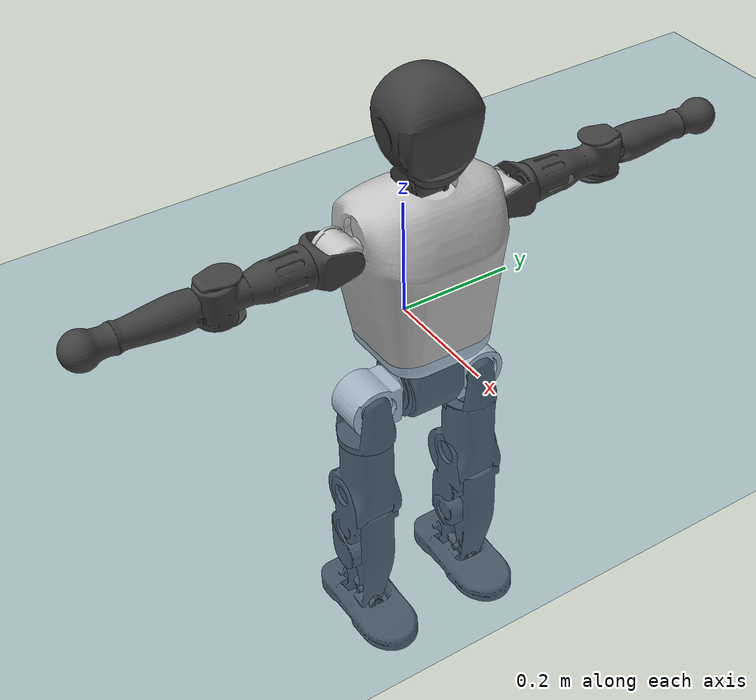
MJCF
<mujoco model="T1">
  <compiler angle="radian" assetdir="assets" balanceinertia="true" inertiafromgeom="false"/>

  <option timestep="0.005" density="1.2" viscosity="2e-05"/>

  <size nkey="1"/>

  <visual>
    <quality shadowsize="8192"/>
    <map shadowclip="0.5"/>
  </visual>

  <default>
    <default class="/">
      <joint armature="0.01" damping="0.01" frictionloss="0.1"/>
      <geom contype="0" conaffinity="0" group="1" solref="-1000 -80"/>
      <site size="0.01 0.005 0.005" group="5"/>
      <general forcelimited="true" biastype="affine" gainprm="25" biasprm="0 -25 -0.6"/>
      <default class="t1">
        <geom rgba="0.25 0.25 0.25 1"/>
        <default class="visual">
          <geom type="mesh" group="2"/>
        </default>
        <default class="collision">
          <geom group="3"/>
        </default>
        <default class="foot">
          <geom size="0.1115 0.05 0.015" type="box" condim="6" group="4" priority="1" solimp="0.015 1 0.015"/>
        </default>
        <default class="reward_collision_sphere">
          <geom group="5" rgba="1 0 0 1"/>
        </default>
      </default>
    </default>
  </default>

  <asset>
    <texture type="skybox" colorspace="auto" name="//unnamed_texture_0" builtin="gradient" rgb1="0.95 0.95 0.95" rgb2="0.95 0.95 0.95" width="100" height="600"/>
    <texture type="2d" colorspace="auto" name="texplane" builtin="checker" rgb1="0.345 0.575 0.748" rgb2="0.345 0.575 0.748" markrgb="1 1 1" width="512" height="512"/>
    <material name="MatPlane" class="/" texture="texplane" texuniform="true" texrepeat="2 2" specular="0.9"/>
    <mesh name="Trunk" class="/" file="Trunk.stl"/>
    <mesh name="H1" class="/" file="H1.stl"/>
    <mesh name="H2" class="/" file="H2.stl"/>
    <mesh name="AL1" class="/" file="AL1.stl"/>
    <mesh name="AL2" class="/" file="AL2.stl"/>
    <mesh name="AL3" class="/" file="AL3.stl"/>
    <mesh name="left_hand_link" class="/" file="left_hand_link.stl"/>
    <mesh name="AR1" class="/" file="AR1.stl"/>
    <mesh name="AR2" class="/" file="AR2.stl"/>
    <mesh name="AR3" class="/" file="AR3.stl"/>
    <mesh name="right_hand_link" class="/" file="right_hand_link.stl"/>
    <mesh name="Waist" class="/" file="Waist.stl"/>
    <mesh name="Hip_Pitch_Left" class="/" file="Hip_Pitch_Left.stl"/>
    <mesh name="Hip_Roll_Left" class="/" file="Hip_Roll_Left.stl"/>
    <mesh name="Hip_Yaw_Left" class="/" file="Hip_Yaw_Left.stl"/>
    <mesh name="Shank_Left" class="/" file="Shank_Left.stl"/>
    <mesh name="Ankle_Cross_Left" class="/" file="Ankle_Cross_Left.stl"/>
    <mesh name="left_foot_link" class="/" file="left_foot_link.stl"/>
    <mesh name="Hip_Pitch_Right" class="/" file="Hip_Pitch_Right.stl"/>
    <mesh name="Hip_Roll_Right" class="/" file="Hip_Roll_Right.stl"/>
    <mesh name="Hip_Yaw_Right" class="/" file="Hip_Yaw_Right.stl"/>
    <mesh name="Shank_Right" class="/" file="Shank_Right.stl"/>
    <mesh name="Ankle_Cross_Right" class="/" file="Ankle_Cross_Right.stl"/>
    <mesh name="right_foot_link" class="/" file="right_foot_link.stl"/>
  </asset>

  <worldbody>
    <geom name="floor" class="/" size="100 100 0.125" type="plane" group="0" material="MatPlane"/>
    <light name="toplight_shadow" class="/" pos="0 0 5" dir="0.0990148 0.0990148 -0.990148" type="directional" ambient="0.04 0.04 0.04" diffuse="0.55 0.55 0.55" specular="0.12 0.12 0.12"/>
    <light name="toplight_fill" class="/" pos="0 0 5" dir="0.0990148 0.0990148 -0.990148" type="directional" castshadow="false" ambient="0.04 0.04 0.04" diffuse="0.3 0.3 0.3" specular="0.08 0.08 0.08"/>
    <body name="trunk" childclass="t1" pos="-0.00271316 0.00018867 0.000982615" quat="1 0.00018295 0.000136449 -0.000117661">
      <inertial pos="0.0448862 0.00190532 0.0934369" quat="0.999962 -0.00189272 -0.0083644 -0.00174747" mass="7.39412" diaginertia="0.0302602 0.0467328 0.0254703"/>
      <joint name="//unnamed_joint_0" type="free" armature="0" damping="0" frictionloss="0"/>
      <geom name="//unnamed_geom_1" class="visual" rgba="0.76 0.76 0.76 1" mesh="Trunk"/>
      <geom name="//unnamed_geom_2" class="collision" size="0.0644091 0.0858788 0.128818" pos="0.0480486 0 0.103518" type="box"/>
      <geom name="//unnamed_geom_3" class="reward_collision_sphere" size="0.0987606" pos="0.0480486 0 0.0862652"/>
      <geom name="//unnamed_geom_4" class="reward_collision_sphere" size="0.0128818" pos="0.0480486 0.0775966 0"/>
      <geom name="//unnamed_geom_5" class="reward_collision_sphere" size="0.0128818" pos="0.0480486 -0.0775966 0"/>
      <geom name="//unnamed_geom_6" class="reward_collision_sphere" size="0.0128818" pos="0.0480486 0.0976805 0.155277"/>
      <geom name="//unnamed_geom_7" class="reward_collision_sphere" size="0.0128818" pos="0.0480486 -0.0976805 0.155277"/>
      <site name="imu" pos="0.00490852 -0.0129576 0.0125754" size="0.00858788"/>
      <camera name="track" pos="0 -1.8258 0" quat="0.707107 0.707107 0 0" mode="trackcom"/>
      <camera name="ego_camera" pos="0.0976988 0 0.362314" quat="-0.5 -0.5 0.5 0.5"/>
      <body name="H1" pos="0.0492586 -0.000612186 0.208242" quat="1 5.50537e-05 -8.66678e-05 -3.73163e-05">
        <inertial pos="-0.00135623 0.000994629 0.0504451" quat="0.764787 -0.0227383 0.010939 0.643789" mass="0.267047" diaginertia="7.84702e-05 0.000140396 6.99826e-05"/>
        <joint name="AAHead_yaw" pos="0 0 0" axis="-0.0059982 -0.0079623 0.99995" range="-1.62157 1.55918" armature="0.00831642" damping="0" frictionloss="0.0743701"/>
        <geom name="//unnamed_geom_8" class="visual" mesh="H1"/>
        <body name="H2" pos="-0.00140239 -0.000295871 0.0548608" quat="1 4.69858e-05 1.48743e-05 -0.000292756">
          <inertial pos="0.00717619 0.00177375 0.0844248" quat="0.987238 0.103539 -0.0851901 -0.0859233" mass="0.396801" diaginertia="0.000650642 0.0012633 0.000812497"/>
          <joint name="Head_pitch" pos="0 0 0" axis="0.0061377 -0.999971 -0.00445732" range="-1.2241 0.359735" armature="0.00917352" damping="0.013165" frictionloss="0.0749888"/>
          <geom name="//unnamed_geom_9" class="visual" mesh="H2"/>
          <geom name="//unnamed_geom_10" class="collision" size="0.068703" pos="0.0080081 0 0.0948917"/>
          <geom name="//unnamed_geom_11" class="reward_collision_sphere" size="0.0772909" pos="0.0160162 0 0.0862652"/>
        </body>
      </body>
      <body name="AL1" pos="0.0469574 0.100909 0.18642" quat="1 -8.82788e-05 0.000694389 -0.000231649">
        <inertial pos="-0.0031796 0.040847 0.00141853" quat="0.495266 0.496531 -0.507213 0.500904" mass="0.330914" diaginertia="0.000449305 0.000852973 0.000141196"/>
        <joint name="Left_Shoulder_Pitch" pos="0 0 0" axis="0.00265267 0.999929 0.0116574" stiffness="0.00437268" range="-3.32867 1.27434" armature="0.00908523" damping="0.00602801" frictionloss="0.0789481"/>
        <geom name="//unnamed_geom_12" class="visual" rgba="0.76 0.76 0.76 1" mesh="AL1"/>
        <body name="AL2" pos="-0.000596971 0.0428823 -0.00249122" quat="1 0.000383523 -0.000284837 0.000337965">
          <inertial pos="0.00200289 0.0323955 -2.84302e-05" quat="0.487861 0.510587 -0.49187 0.509271" mass="0.0971848" diaginertia="0.000129046 0.000217659 8.01418e-05"/>
          <joint name="Left_Shoulder_Roll" pos="0 0 0" axis="-0.999975 0.00459465 0.005303" range="-1.62768 1.77884" armature="0.00860721" damping="0.00880606" frictionloss="0.0819956"/>
          <geom name="//unnamed_geom_13" class="visual" mesh="AL2"/>
          <body name="AL3" pos="0.000492094 0.0553463 0.00254284" quat="1 -0.000314461 -0.000301094 0.000116074">
            <inertial pos="0.00142354 0.0778303 -0.000248647" quat="0.701575 0.712577 -0.00497042 -0.000832034" mass="0.651665" diaginertia="0.00434058 0.00816757 0.000295304"/>
            <joint name="Left_Elbow_Pitch" pos="0 0 0" axis="8.50252e-05 -1 -0.000363464" range="-2.25338 2.26075" armature="0.00789727" damping="0.0149488" frictionloss="0.077771"/>
            <geom name="//unnamed_geom_14" class="visual" mesh="AL3"/>
            <geom name="//unnamed_geom_15" class="collision" size="0.0257636 0.0644091" pos="0 0.0456451 0" quat="0.707105 0.707108 0 0" type="cylinder"/>
            <geom name="//unnamed_geom_16" class="reward_collision_sphere" size="0.0309164"/>
            <body name="left_hand_link" pos="-0.00189972 0.134189 0.00268815" quat="1 2.18671e-05 0.000356723 0.000149378">
              <inertial pos="0.000931532 0.0986716 0.00199888" quat="0.703036 0.7111 -0.00387953 0.00785478" mass="0.202638" diaginertia="0.00272703 0.00521259 0.000104396"/>
              <joint name="Left_Elbow_Yaw" pos="0 0 0" axis="0.00473337 0.00849192 0.999953" range="-2.47509 -0.053107" armature="0.00823887" damping="0.0166086" frictionloss="0.0897954"/>
              <geom name="//unnamed_geom_17" class="visual" mesh="left_hand_link"/>
              <geom name="//unnamed_geom_18" class="collision" size="0.0257636 0.0751439" pos="0 0.118677 0" quat="0.707105 0.707108 0 0" type="cylinder"/>
              <geom name="//unnamed_geom_19" class="reward_collision_sphere" size="0.0429394"/>
              <geom name="//unnamed_geom_20" class="reward_collision_sphere" size="0.0300576" pos="0 0.100419 0"/>
              <geom name="//unnamed_geom_21" class="reward_collision_sphere" size="0.0300576" pos="0 0.196274 0"/>
            </body>
          </body>
        </body>
      </body>
      <body name="AR1" pos="0.0479571 -0.0949002 0.1871" quat="0.999999 -0.000193087 0.000118329 -0.00120632">
        <inertial pos="-0.00207473 -0.0410352 -0.00157926" quat="0.499486 0.49536 -0.509736 0.495278" mass="0.327626" diaginertia="0.000437879 0.000811442 0.000136161"/>
        <joint name="Right_Shoulder_Pitch" pos="0 0 0" axis="0.00601094 -0.999979 0.00250784" stiffness="0.000651318" range="-1.21245 3.31097" armature="0.00975051" damping="0.0093978" frictionloss="0.0887223"/>
        <geom name="//unnamed_geom_22" class="visual" rgba="0.76 0.76 0.76 1" mesh="AR1"/>
        <body name="AR2" pos="-0.000323185 -0.044543 0.000303204" quat="1 0.000458705 0.000267313 0.000794446">
          <inertial pos="0.00102231 -0.0356486 -0.00166164" quat="0.507899 0.484466 -0.509038 0.498208" mass="0.10018" diaginertia="0.000126402 0.00021243 8.41988e-05"/>
          <joint name="Right_Shoulder_Roll" pos="0 0 0" axis="-0.999864 -0.0164675 -0.00127416" range="-1.75969 1.5837" armature="0.00903148" damping="0.00905504" frictionloss="0.0801049"/>
          <geom name="//unnamed_geom_23" class="visual" mesh="AR2"/>
          <body name="AR3" pos="-0.00117526 -0.0550886 -0.000901514" quat="1 7.29635e-05 3.68223e-05 0.000147814">
            <inertial pos="-0.00261616 -0.0779062 -0.000361224" quat="0.706961 0.707243 -0.00353687 -0.000406483" mass="0.636615" diaginertia="0.00422989 0.0080182 0.000281671"/>
            <joint name="Right_Elbow_Pitch" pos="0 0 0" axis="-0.000174004 1 5.36031e-05" range="-2.31293 2.28931" armature="0.00845416" damping="0.0114014" frictionloss="0.0744412"/>
            <geom name="//unnamed_geom_24" class="visual" mesh="AR3"/>
            <geom name="//unnamed_geom_25" class="collision" size="0.0257636 0.0644091" pos="0 -0.0456451 0" quat="0.707105 0.707108 0 0" type="cylinder"/>
            <geom name="//unnamed_geom_26" class="reward_collision_sphere" size="0.0309164"/>
            <body name="right_hand_link" pos="-0.00210672 -0.132095 0.0020077" quat="1 3.31653e-05 -4.84766e-05 4.12747e-05">
              <inertial pos="-0.000339591 -0.0971856 -0.00100125" quat="0.705528 0.708669 0.00269066 0.00343838" mass="0.201293" diaginertia="0.00263516 0.00504954 9.7179e-05"/>
              <joint name="Right_Elbow_Yaw" pos="0 0 0" axis="-0.0107922 -0.000602577 0.999942" range="-0.0534789 2.4335" armature="0.00738721" damping="0.0108089" frictionloss="0.0951965"/>
              <geom name="//unnamed_geom_27" class="visual" mesh="right_hand_link"/>
              <geom name="//unnamed_geom_28" class="collision" size="0.0257636 0.0751439" pos="0 -0.118677 0" quat="0.707105 0.707108 0 0" type="cylinder"/>
              <geom name="//unnamed_geom_29" class="reward_collision_sphere" size="0.0429394"/>
              <geom name="//unnamed_geom_30" class="reward_collision_sphere" size="0.0300576" pos="0 -0.100419 0"/>
              <geom name="//unnamed_geom_31" class="reward_collision_sphere" size="0.0300576" pos="0 -0.196274 0"/>
            </body>
          </body>
        </body>
      </body>
      <body name="Waist" pos="0.0528631 -0.00387981 -0.0977089" quat="1 -3.71367e-05 0.000725246 -0.000267353">
        <inertial pos="0.0029828 0.0007336 0.0050343" quat="0.984729 0.00575485 -0.173975 0.00281438" mass="1.59606" diaginertia="0.00169052 0.00314157 0.002126"/>
        <joint name="Waist" pos="0 0 0" axis="0.00688821 -0.00588892 0.999959" stiffness="0.00490263" range="-1.56754 1.6191" armature="0.0086141" damping="0.00822691" frictionloss="0.0825367"/>
        <geom name="//unnamed_geom_32" class="visual" mesh="Waist"/>
        <body name="Hip_Pitch_Left" pos="0.00171597 0.0955899 -0.000669437" quat="0.999999 0.000950454 -0.000243779 -0.00100215">
          <inertial pos="-0.000397565 -0.00729738 -0.0154642" quat="0.974955 0.2218 0.0158253 0.00413027" mass="0.666373" diaginertia="0.000615051 0.00095667 0.000593905"/>
          <joint name="Left_Hip_Pitch" pos="0 0 0" axis="0.00019958 0.999998 -0.00181027" range="-1.7501 1.52866" armature="0.00951456" damping="0.0151558" frictionloss="0.08431"/>
          <geom name="//unnamed_geom_33" class="visual" rgba="0.76 0.76 0.76 1" mesh="Hip_Pitch_Left"/>
          <body name="Hip_Roll_Left" pos="0.00373861 -0.00306801 -0.0115649" quat="1 1.76666e-05 -6.23201e-05 -0.000192944">
            <inertial pos="0.00115085 0.00209904 -0.0490788" quat="0.707135 -0.00633539 -0.0062561 0.707022" mass="0.241779" diaginertia="0.000569199 0.00096898 0.000234912"/>
            <joint name="Left_Hip_Roll" pos="0 0 0" axis="-0.999927 0.00308049 0.0116601" range="-1.6086 0.247368" armature="0.00960434" damping="0.021761" frictionloss="0.0891669"/>
            <geom name="//unnamed_geom_34" class="visual" mesh="Hip_Roll_Left"/>
            <geom name="//unnamed_geom_35" class="reward_collision_sphere" size="0.0472333"/>
            <body name="Hip_Yaw_Left" pos="0.00623883 -0.003024 -0.0675275" quat="0.999999 -0.000304528 -0.000831392 -0.000465497">
              <inertial pos="-0.00367073 0.00163675 -0.0782334" quat="0.690379 -0.0435231 -0.036241 0.721227" mass="1.39224" diaginertia="0.00830179 0.0164049 0.00125426"/>
              <joint name="Left_Hip_Yaw" pos="0 0 0" axis="-0.00283558 0.00424612 -0.999987" stiffness="0.00179858" range="-0.962177 0.981416" armature="0.00871975" damping="0.0114442" frictionloss="0.0833061"/>
              <geom name="//unnamed_geom_36" class="visual" mesh="Hip_Yaw_Left"/>
              <geom name="//unnamed_geom_37" class="collision" size="0.0429394 0.068703" type="cylinder"/>
              <body name="Shank_Left" pos="-0.00455563 -0.00112233 -0.107881" quat="1 0.000502157 -0.000367199 -7.26401e-05">
                <inertial pos="-0.0054337 -0.00107939 -0.107099" quat="0.996958 0.000797291 -0.0327326 0.0707356" mass="1.13906" diaginertia="0.0119586 0.0230527 0.000906091"/>
                <joint name="Left_Knee_Pitch" pos="0 0 0" axis="9.18106e-06 0.999942 -0.0107412" range="-0.00062172 2.30517" armature="0.00925274" damping="0" frictionloss="0.0872287"/>
                <geom name="//unnamed_geom_38" class="visual" mesh="Shank_Left"/>
                <geom name="//unnamed_geom_39" class="collision" size="0.0429394 0.0644091" pos="0 0 -0.103518" type="cylinder"/>
                <geom name="//unnamed_geom_40" class="reward_collision_sphere" size="0.0558212"/>
                <body name="Ankle_Cross_Left" pos="-0.000809871 -0.00152428 -0.244885" quat="0.999999 0.000806268 -0.000347401 -0.000685342">
                  <inertial pos="-0.000190125 0.00232623 -0.00474634" quat="0.443915 0.553172 0.549963 0.441001" mass="0.0464456" diaginertia="9.21694e-06 1.60905e-05 5.5494e-06"/>
                  <joint name="Left_Ankle_Pitch" pos="0 0 0" axis="-0.00124361 0.999998 0.00128414" range="-0.874349 0.343535" armature="0.00767329" damping="0.00678998" frictionloss="0.0843965"/>
                  <geom name="//unnamed_geom_41" class="visual" mesh="Ankle_Cross_Left"/>
                  <body name="left_foot_link" pos="-0.00295482 -0.00148181 -0.00931049" quat="0.999999 0.00116368 0.000614962 0.000399361">
                    <inertial pos="-0.00102817 -0.00197757 -0.00929186" quat="-0.00375493 0.620358 0.0018601 0.784307" mass="0.419364" diaginertia="0.000840968 0.00148343 0.00105336"/>
                    <joint name="Left_Ankle_Roll" pos="0 0 0" axis="-0.999927 -0.0120653 -0.000323187" range="-0.393256 0.472753" armature="0.00830268" damping="0.00420117" frictionloss="0.0757388"/>
                    <geom name="//unnamed_geom_42" class="visual" mesh="left_foot_link"/>
                    <geom name="left_foot" class="foot" size="0.10427 0.0453353 0.0120864" pos="0.0080081 0 -0.0129398"/>
                    <geom name="//unnamed_geom_44" class="reward_collision_sphere" size="0.044657" pos="0.0080081 0 -0.0129398"/>
                    <geom name="//unnamed_geom_45" class="reward_collision_sphere" size="0.0257636" pos="0.076077 -0.0209967 -0.0129398"/>
                    <geom name="//unnamed_geom_46" class="reward_collision_sphere" size="0.0257636" pos="-0.0560567 -0.0209967 -0.0129398"/>
                    <site name="left_foot" class="foot" pos="0.0080081 0 -0.0129398" size="0.00858788"/>
                  </body>
                </body>
              </body>
            </body>
          </body>
        </body>
        <body name="Hip_Pitch_Right" pos="-0.00491965 -0.0990137 0.00312854" quat="1 -9.89824e-06 -3.89486e-07 2.48999e-06">
          <inertial pos="0.0018542 0.00738514 -0.0178075" quat="0.970656 -0.2397 0.0192206 -0.000786732" mass="0.64972" diaginertia="0.000598513 0.000939502 0.000608507"/>
          <joint name="Right_Hip_Pitch" pos="0 0 0" axis="0.00854285 -0.999962 -0.00154547" range="-1.61754 1.76383" armature="0.00743636" damping="0.0145936" frictionloss="0.0975006"/>
          <geom name="//unnamed_geom_47" class="visual" rgba="0.76 0.76 0.76 1" mesh="Hip_Pitch_Right"/>
          <body name="Hip_Roll_Right" pos="-0.00204575 -0.000603007 -0.0142703" quat="0.999999 0.000376957 -0.000927452 4.54495e-05">
            <inertial pos="-0.000280861 0.00240218 -0.0449391" quat="0.707123 -0.00634813 -0.00633396 0.707034" mass="0.24761" diaginertia="0.000553089 0.000913963 0.000243381"/>
            <joint name="Right_Hip_Roll" pos="0 0 0" axis="-0.999991 -0.0039597 0.00116231" range="-0.233591 1.56481" armature="0.00881625" damping="0.0197951" frictionloss="0.0917933"/>
            <geom name="//unnamed_geom_48" class="visual" mesh="Hip_Roll_Right"/>
            <geom name="//unnamed_geom_49" class="reward_collision_sphere" size="0.0472333"/>
            <body name="Hip_Yaw_Right" pos="0.00224876 -0.0023327 -0.074861" quat="1 0.000242196 8.47762e-05 -0.00012957">
              <inertial pos="-0.00626578 -0.00217039 -0.0751648" quat="0.714992 -0.035564 -0.0332491 0.697435" mass="1.37" diaginertia="0.00821935 0.015445 0.00119415"/>
              <joint name="Right_Hip_Yaw" pos="0 0 0" axis="-0.00070443 -0.00349867 -0.999994" range="-0.979177 1.03159" armature="0.00926533" damping="0" frictionloss="0.0741573"/>
              <geom name="//unnamed_geom_50" class="visual" mesh="Hip_Yaw_Right"/>
              <geom name="//unnamed_geom_51" class="collision" size="0.0429394 0.068703" type="cylinder"/>
              <body name="Shank_Right" pos="-0.0108657 -0.00228561 -0.116522" quat="0.999999 -0.000338659 -0.000781904 0.00104965">
                <inertial pos="-0.00599293 -0.000241388 -0.105238" quat="0.999255 -0.000286209 -0.0195642 -0.0332523" mass="1.13864" diaginertia="0.0112662 0.0222714 0.000952805"/>
                <joint name="Right_Knee_Pitch" pos="0 0 0" axis="-0.00371924 -0.999993 0.000995288" range="-2.32246 -0.0164622" armature="0.00750527" damping="0.0114052" frictionloss="0.0801494"/>
                <geom name="//unnamed_geom_52" class="visual" mesh="Shank_Right"/>
                <geom name="//unnamed_geom_53" class="collision" size="0.0429394 0.0644091" pos="0 0 -0.103518" type="cylinder"/>
                <geom name="//unnamed_geom_54" class="reward_collision_sphere" size="0.0558212"/>
                <body name="Ankle_Cross_Right" pos="0.00068008 0.00169024 -0.245336" quat="1 -3.40901e-07 2.75201e-06 -1.5062e-06">
                  <inertial pos="-0.00179272 0.00269768 -0.00695147" quat="0.443354 0.550491 0.550734 0.443948" mass="0.0448444" diaginertia="9.39854e-06 1.58148e-05 5.33273e-06"/>
                  <joint name="Right_Ankle_Pitch" pos="0 0 0" axis="0.00220603 -0.999998 -0.000142634" range="-0.314327 0.851895" armature="0.0087515" damping="0.0189732" frictionloss="0.0837484"/>
                  <geom name="//unnamed_geom_55" class="visual" mesh="Ankle_Cross_Right"/>
                  <body name="right_foot_link" pos="0.000149761 -0.000564371 -0.0190982" quat="1 -0.000197578 -5.65888e-05 -0.000276834">
                    <inertial pos="2.04695e-05 -3.50101e-05 -0.00555774" quat="-0.000510733 0.62091 -3.74393e-05 0.783882" mass="0.434591" diaginertia="0.000929733 0.00155579 0.00110512"/>
                    <joint name="Right_Ankle_Roll" pos="0 0 0" axis="-0.999938 -0.00705413 0.00864987" stiffness="0.00396383" range="-0.447916 0.413906" armature="0.00995792" damping="0.0199776" frictionloss="0.0910827"/>
                    <geom name="//unnamed_geom_56" class="visual" mesh="right_foot_link"/>
                    <geom name="right_foot" class="foot" size="0.0969883 0.0426717 0.0128048" pos="0.0080081 0 -0.0129398"/>
                    <geom name="//unnamed_geom_58" class="reward_collision_sphere" size="0.0343515"/>
                    <geom name="//unnamed_geom_59" class="reward_collision_sphere" size="0.0257636" pos="0.0080081 0 -0.0129398"/>
                    <geom name="//unnamed_geom_60" class="reward_collision_sphere" size="0.0257636" pos="0.076077 0.0209967 -0.0129398"/>
                    <geom name="//unnamed_geom_61" class="reward_collision_sphere" size="0.0257636" pos="-0.0560567 0.0209967 -0.0129398"/>
                    <site name="right_foot" class="foot" pos="0.0080081 0 -0.0129398" size="0.00858788"/>
                  </body>
                </body>
              </body>
            </body>
          </body>
        </body>
      </body>
    </body>
  </worldbody>

  <contact>
    <pair class="/" geom1="floor" geom2="left_foot" name="//unnamed_contact_0"/>
    <pair class="/" geom1="floor" geom2="right_foot" name="//unnamed_contact_1"/>
  </contact>

  <actuator>
    <general name="AAHead_yaw" class="/" joint="AAHead_yaw" forcerange="-6.14157 6.14157" gainprm="20.0225" biasprm="0 -20.0225 -0.539538"/>
    <general name="Head_pitch" class="/" joint="Head_pitch" forcerange="-5.83122 5.83122" gainprm="20.0225" biasprm="0 -20.0225 -0.539538"/>
    <general name="Left_Shoulder_Pitch" class="/" joint="Left_Shoulder_Pitch" forcerange="-16.9494 16.9494" gainprm="20.0225" biasprm="0 -20.0225 -0.539538"/>
    <general name="Left_Shoulder_Roll" class="/" joint="Left_Shoulder_Roll" forcerange="-15.687 15.687" gainprm="20.0225" biasprm="0 -20.0225 -0.539538"/>
    <general name="Left_Elbow_Pitch" class="/" joint="Left_Elbow_Pitch" forcerange="-16.4079 16.4079" gainprm="20.0225" biasprm="0 -20.0225 -0.539538"/>
    <general name="Left_Elbow_Yaw" class="/" joint="Left_Elbow_Yaw" forcerange="-16.035 16.035" gainprm="20.0225" biasprm="0 -20.0225 -0.539538"/>
    <general name="Right_Shoulder_Pitch" class="/" joint="Right_Shoulder_Pitch" forcerange="-14.4501 14.4501" gainprm="20.0225" biasprm="0 -20.0225 -0.539538"/>
    <general name="Right_Shoulder_Roll" class="/" joint="Right_Shoulder_Roll" forcerange="-16.139 16.139" gainprm="20.0225" biasprm="0 -20.0225 -0.539538"/>
    <general name="Right_Elbow_Pitch" class="/" joint="Right_Elbow_Pitch" forcerange="-16.6523 16.6523" gainprm="20.0225" biasprm="0 -20.0225 -0.539538"/>
    <general name="Right_Elbow_Yaw" class="/" joint="Right_Elbow_Yaw" forcerange="-13.8475 13.8475" gainprm="20.0225" biasprm="0 -20.0225 -0.539538"/>
    <general name="Waist" class="/" joint="Waist" forcerange="-25.6162 25.6162" gainprm="20.0225" biasprm="0 -20.0225 -0.539538"/>
    <general name="Left_Hip_Pitch" class="/" joint="Left_Hip_Pitch" forcerange="-40.0781 40.0781" gainprm="20.0225" biasprm="0 -20.0225 -0.539538"/>
    <general name="Left_Hip_Roll" class="/" joint="Left_Hip_Roll" forcerange="-28.4186 28.4186" gainprm="20.0225" biasprm="0 -20.0225 -0.539538"/>
    <general name="Left_Hip_Yaw" class="/" joint="Left_Hip_Yaw" forcerange="-23.7534 23.7534" gainprm="20.0225" biasprm="0 -20.0225 -0.539538"/>
    <general name="Left_Knee_Pitch" class="/" joint="Left_Knee_Pitch" forcerange="-53.2944 53.2944" gainprm="20.0225" biasprm="0 -20.0225 -0.539538"/>
    <general name="Left_Ankle_Pitch" class="/" joint="Left_Ankle_Pitch" forcerange="-16.9919 16.9919" gainprm="20.0225" biasprm="0 -20.0225 -0.539538"/>
    <general name="Left_Ankle_Roll" class="/" joint="Left_Ankle_Roll" forcerange="-14.189 14.189" gainprm="20.0225" biasprm="0 -20.0225 -0.539538"/>
    <general name="Right_Hip_Pitch" class="/" joint="Right_Hip_Pitch" forcerange="-37.8807 37.8807" gainprm="20.0225" biasprm="0 -20.0225 -0.539538"/>
    <general name="Right_Hip_Roll" class="/" joint="Right_Hip_Roll" forcerange="-23.5521 23.5521" gainprm="20.0225" biasprm="0 -20.0225 -0.539538"/>
    <general name="Right_Hip_Yaw" class="/" joint="Right_Hip_Yaw" forcerange="-26.488 26.488" gainprm="20.0225" biasprm="0 -20.0225 -0.539538"/>
    <general name="Right_Knee_Pitch" class="/" joint="Right_Knee_Pitch" forcerange="-55.8387 55.8387" gainprm="20.0225" biasprm="0 -20.0225 -0.539538"/>
    <general name="Right_Ankle_Pitch" class="/" joint="Right_Ankle_Pitch" forcerange="-18.5118 18.5118" gainprm="20.0225" biasprm="0 -20.0225 -0.539538"/>
    <general name="Right_Ankle_Roll" class="/" joint="Right_Ankle_Roll" forcerange="-13.1046 13.1046" gainprm="20.0225" biasprm="0 -20.0225 -0.539538"/>
  </actuator>

  <sensor>
    <gyro site="imu" name="imu_angular_velocity"/>
    <velocimeter site="imu" name="imu_linear_velocity"/>
    <framelinvel objtype="site" objname="left_foot" name="left_foot_global_linear_velocity"/>
    <framelinvel objtype="site" objname="right_foot" name="right_foot_global_linear_velocity"/>
  </sensor>

  <keyframe>
    <key name="home" qpos="0 0 0.6385 1 0 0 0 0 0 0 1.4 0 -0.4 0 -1.4 0 0.4 0 -0.4 0 0 0.8 -0.4 0 0.4 0 0 -0.8 0.4 0"/>
  </keyframe>
</mujoco>
